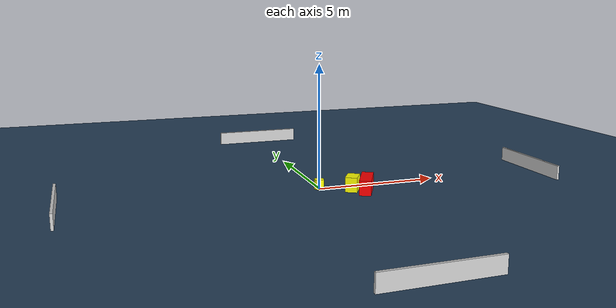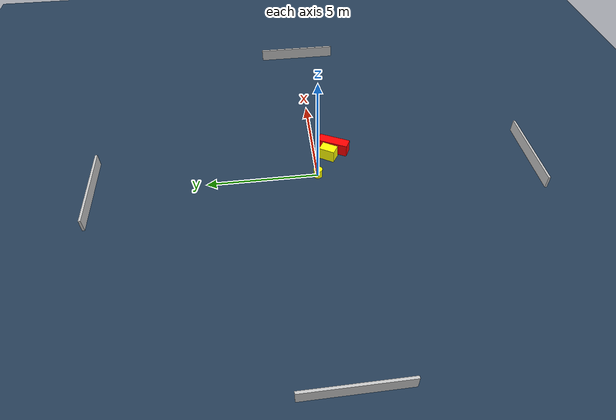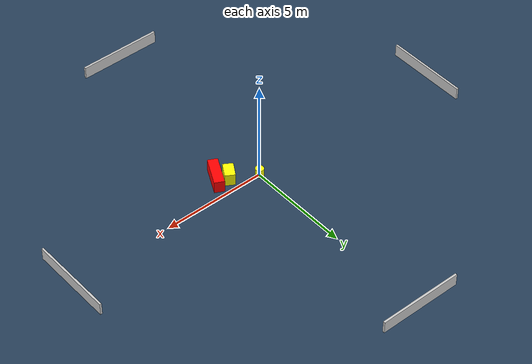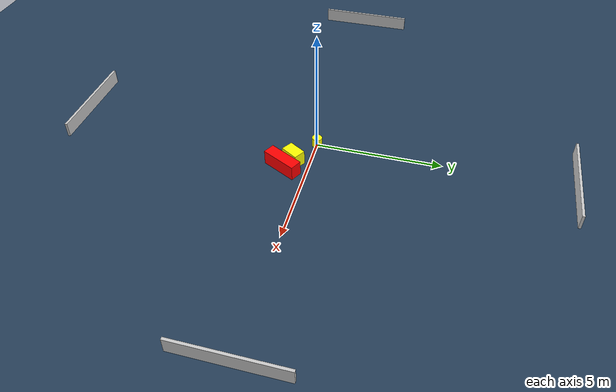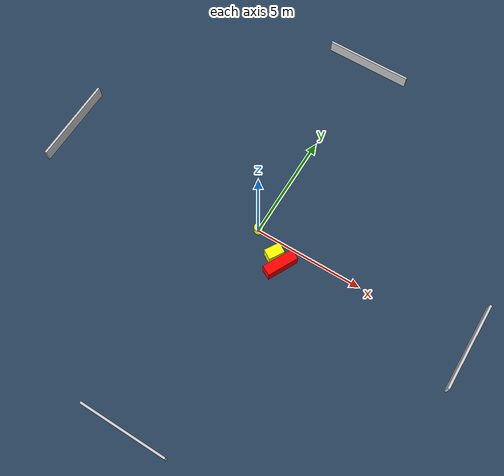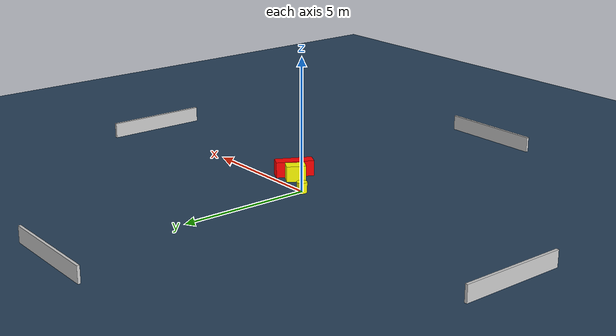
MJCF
<?xml version="1.0" ?>
<mujoco model="generated_environment">
  <option timestep="0.01" integrator="RK4" cone="elliptic"/>
  <default>
    <geom density="1"/>
  </default>
  <asset>
    <texture builtin="gradient" height="3072" name="skybox" rgb1="0.3 0.5 0.7" rgb2="0 0 0" type="skybox" width="512"/>
    <texture builtin="checker" height="300" name="groundplane" rgb1="0.2 0.3 0.4" rgb2="0.1 0.2 0.3" type="2d" width="300"/>
    <material name="groundplane" reflectance="0.2" texrepeat="5 5" texture="groundplane"/>
  </asset>
  <worldbody>
    <light dir="0 0 -1" directional="true" pos="0 0 1.5"/>
    <geom condim="3" friction="0.5 0.005 0.001" material="groundplane" name="floor" pos="0 0 0" size="0 0 0.05" type="plane"/>
    <body name="walls">
      <geom name="wall_1" condim="4" pos="-10.0 0.0 0.3" rgba="0.800000011920929 0.800000011920929 0.800000011920929 1.0" size="0.05 2.0 0.3" type="box"/>
      <geom name="wall_2" condim="4" pos="10.0 0.0 0.3" rgba="0.800000011920929 0.800000011920929 0.800000011920929 1.0" size="0.05 2.0 0.3" type="box"/>
      <geom name="wall_3" condim="4" pos="0.0 -10.0 0.3" rgba="0.800000011920929 0.800000011920929 0.800000011920929 1.0" size="2.0 0.05 0.3" type="box"/>
      <geom name="wall_4" condim="4" pos="0.0 10.0 0.3" rgba="0.800000011920929 0.800000011920929 0.800000011920929 1.0" size="2.0 0.05 0.3" type="box"/>
    </body>
    <body name="robot">
      <joint name="joint_x" type="slide" pos="0 0 0" axis="1 0 0"/>
      <joint name="joint_y" type="slide" pos="0 0 0" axis="0 1 0"/>
      <geom name="robot" type="cylinder" pos="0.0 0.0 0.2" size="0.2 0.2 0.0" mass="5.0" friction="1.0 0.005 0.0001" condim="4" rgba="1.0 1.0 0.0 1.0"/>
    </body>
    <body name="obstacle_1_movable">
      <geom name="obstacle_1_movable" condim="4" pos="1.1848170898279085 -0.6399474007241902 0.3" euler="0 0 58.62594146145261" friction="0.0 0.005 0.001" rgba="1.0 1.0 0.0 1.0" size="0.3685332036614687 0.24192397838171464 0.3" type="box" mass="0.1"/>
      <joint type="free"/>
    </body>
    <body name="obstacle_2_static">
      <geom name="obstacle_2_static" condim="4" pos="1.6595026203810257 -0.9433795106363138 0.3" euler="0 0 332.9368491571705" friction="0.0 0.005 0.001" rgba="1.0 0.0 0.0 1.0" size="0.2376315257288762 0.7244279204773345 0.3" type="box"/>
    </body>
  </worldbody>
  <actuator>
    <motor name="actuator_x" joint="joint_x" gear="1" ctrlrange="-1 1"/>
    <motor name="actuator_y" joint="joint_y" gear="1" ctrlrange="-1 1"/>
  </actuator>
</mujoco>
